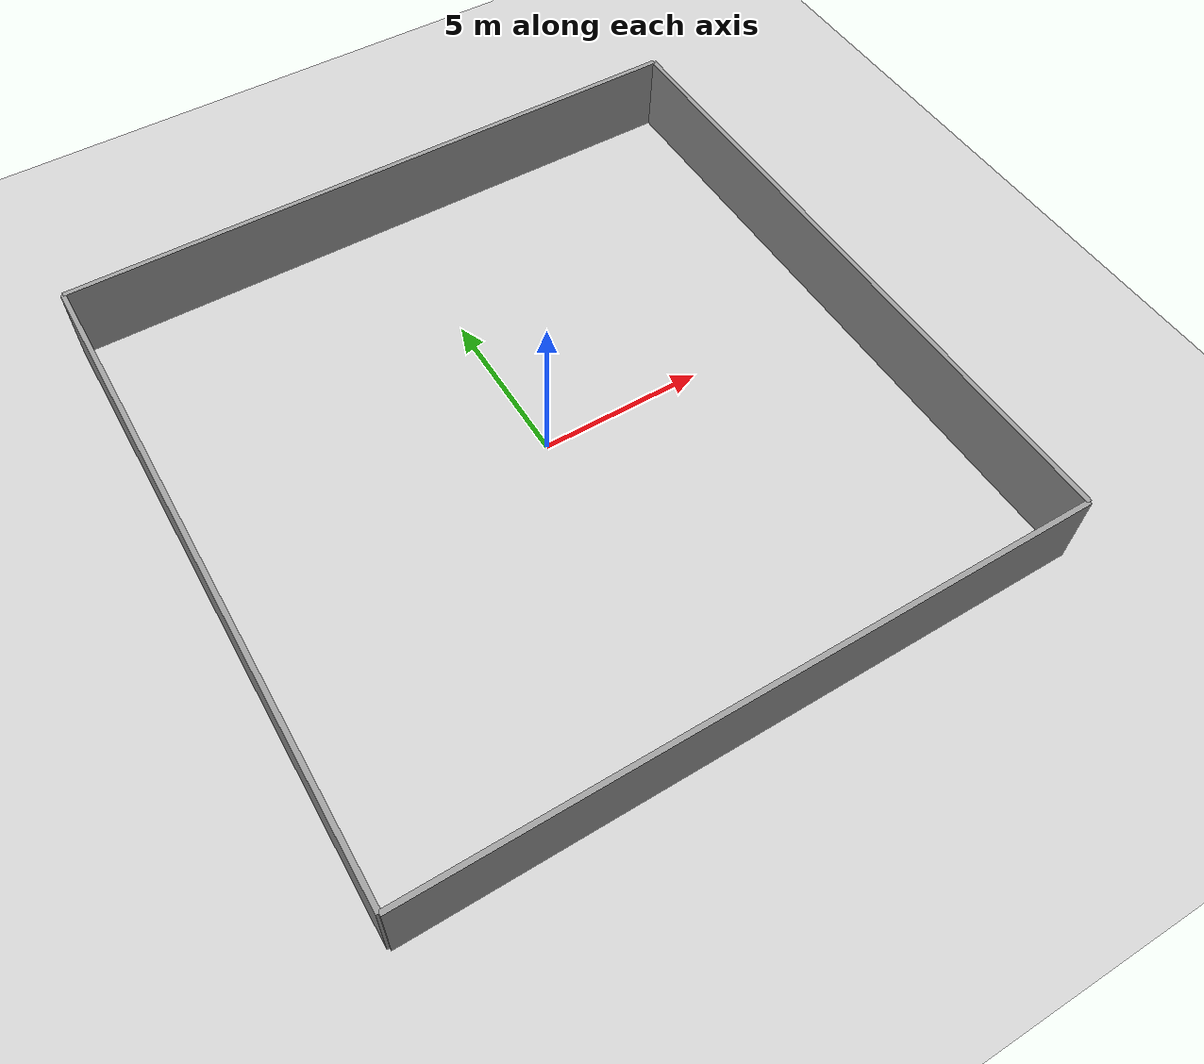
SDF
<?xml version="1.0" ?>
<sdf version="1.4">
  <world name="square_20">
    <include>
      <uri>model://ground_plane</uri>
    </include>
    <include>
      <uri>model://sun</uri>
    </include>
    <include>
      <uri>model://square_20</uri>
      <name>square_map_20meter</name>
      <pose>0 0 0 0 0 0</pose>
    </include>
  </world>
</sdf>

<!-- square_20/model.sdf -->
<sdf version='1.6'>
  <model name='square_20'>
    <pose frame=''>-0.0 0.0 0 0 -0 0</pose>
    <link name='Wall_0'>
      <collision name='Wall_0_Collision'>
        <geometry>
          <box>
            <size>0.15 20.00 2.5</size>
          </box>
        </geometry>
        <pose frame=''>0 0 1.25 0 -0 0</pose>
      </collision>
      <visual name='Wall_0_Visual'>
        <pose frame=''>0 0 1.25 0 -0 0</pose>
        <geometry>
          <box>
            <size>0.15 20.00 2.5</size>
          </box>
        </geometry>
        <material>
          <script>
            <uri>file://media/materials/scripts/gazebo.material</uri>
            <name>Gazebo/Grey</name>
          </script>
          <ambient>1 1 1 1</ambient>
        </material>
      </visual>
      <pose frame=''>10 0.0 0 0 -0 0</pose>
    </link>
    <link name='Wall_1'>
      <collision name='Wall_1_Collision'>
        <geometry>
          <box>
            <size>0.15 20.00 2.5</size>
          </box>
        </geometry>
        <pose frame=''>0 0 1.25 0 -0 0</pose>
      </collision>
      <visual name='Wall_1_Visual'>
        <pose frame=''>0 0 1.25 0 -0 0</pose>
        <geometry>
          <box>
            <size>0.15 20.00 2.5</size>
          </box>
        </geometry>
        <material>
          <script>
            <uri>file://media/materials/scripts/gazebo.material</uri>
            <name>Gazebo/Grey</name>
          </script>
          <ambient>1 1 1 1</ambient>
        </material>
      </visual>
      <pose frame=''>-10.00 0 0 0 0 0</pose>
    </link>
    <link name='Wall_2'>
      <collision name='Wall_2_Collision'>
        <geometry>
          <box>
            <size>20.00 0.15 2.5</size>
          </box>
        </geometry>
        <pose frame=''>0 0 1.25 0 -0 0</pose>
      </collision>
      <visual name='Wall_2_Visual'>
        <pose frame=''>0 0 1.25 0 -0 0</pose>
        <geometry>
          <box>
            <size>20.00 0.15 2.5</size>
          </box>
        </geometry>
        <material>
          <script>
            <uri>file://media/materials/scripts/gazebo.material</uri>
            <name>Gazebo/Grey</name>
          </script>
          <ambient>1 1 1 1</ambient>
        </material>
      </visual>
      <pose frame=''>0 -10.00 0 0 0 0</pose>
    </link>
    <link name='Wall_3'>
      <collision name='Wall_3_Collision'>
        <geometry>
          <box>
            <size>20.00 0.15 2.5</size>
          </box>
        </geometry>
        <pose frame=''>0 0 1.25 0 -0 0</pose>
      </collision>
      <visual name='Wall_3_Visual'>
        <pose frame=''>0 0 1.25 0 -0 0</pose>
        <geometry>
          <box>
            <size>20.00 0.15 2.5</size>
          </box>
        </geometry>
        <material>
          <script>
            <uri>file://media/materials/scripts/gazebo.material</uri>
            <name>Gazebo/Grey</name>
          </script>
          <ambient>1 1 1 1</ambient>
        </material>
      </visual>
      <pose frame=''>0 10.00 0 0 0 0 </pose>
    </link>
    <static>1</static>
  </model>
</sdf>
